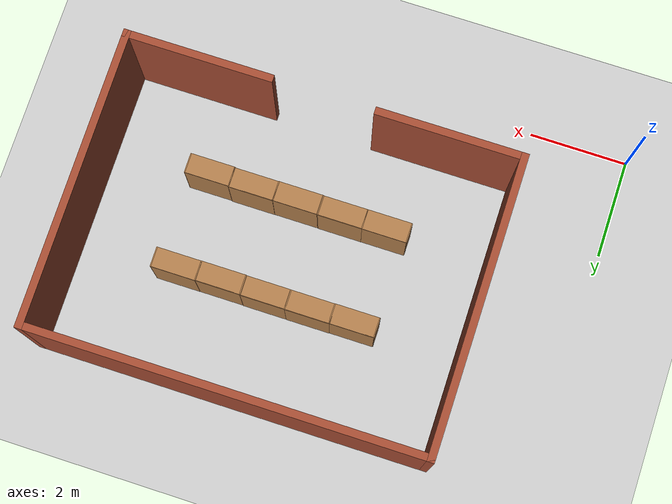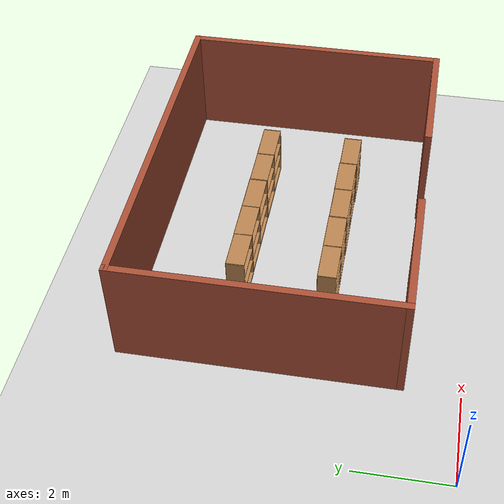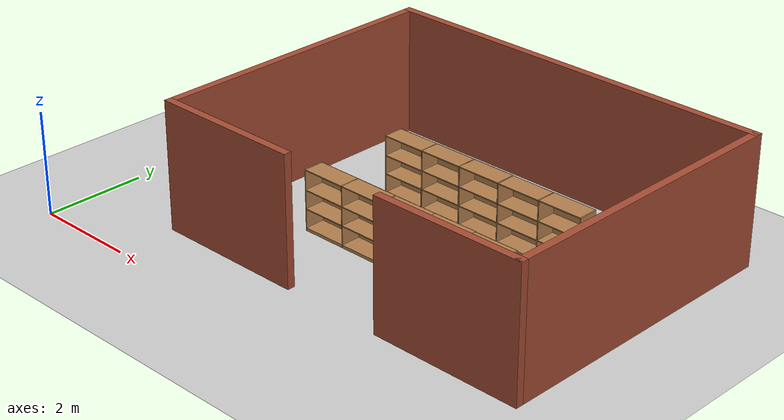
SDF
<sdf version="1.7">
 <world name="default">
  <light name="sun" type="directional">
   <pose>0 0 10 0 -0 0</pose>
   <diffuse>0.8 0.8 0.8 1</diffuse>
   <specular>0.2 0.2 0.2 1</specular>
   <attenuation>
    <range>1000</range>
    <constant>0.9</constant>
    <linear>0.01</linear>
    <quadratic>0.001</quadratic>
   </attenuation>
   <direction>-0.5 0.1 -0.9</direction>
   <spot><inner_angle>0</inner_angle><outer_angle>0</outer_angle><falloff>0</falloff></spot>
  </light>
  <model name="ground_plane">
   <static>1</static>
   <link name="link">
    <collision name="collision">
     <geometry><plane><normal>0 0 1</normal><size>100 100</size></plane></geometry>
     <surface><friction><ode><mu>100</mu><mu2>50</mu2></ode></friction></surface>
    </collision>
    <visual name="visual">
     <cast_shadows>0</cast_shadows>
     <geometry><plane><normal>0 0 1</normal><size>100 100</size></plane></geometry>
     <material>
      <script><uri>file://media/materials/scripts/gazebo.material</uri><name>Gazebo/Grey</name></script>
     </material>
    </visual>
   </link>
  </model>
  <gravity>0 0 -9.8</gravity>
  <magnetic_field>6e-06 2.3e-05 -4.2e-05</magnetic_field>
  <atmosphere type="adiabatic"/>
  <physics type="ode">
   <max_step_size>0.001</max_step_size>
   <real_time_factor>1</real_time_factor>
   <real_time_update_rate>1000</real_time_update_rate>
  </physics>
  <scene><ambient>0.4 0.4 0.4 1</ambient><background>0.7 0.7 0.7 1</background><shadows>1</shadows></scene>
  <audio><device>default</device></audio>
  <spherical_coordinates>
   <surface_model>EARTH_WGS84</surface_model>
   <latitude_deg>0</latitude_deg>
   <longitude_deg>0</longitude_deg>
   <elevation>0</elevation>
   <heading_deg>0</heading_deg>
  </spherical_coordinates>
  <model name="Mushroom">
   <pose>5.00197 3.57425 0 0 -0 0</pose>
   <link name="Wall_23">
    <collision name="Wall_23_Collision">
     <geometry><box><size>6 0.15 2.5</size></box></geometry>
     <pose>0 0 1.25 0 -0 0</pose>
    </collision>
    <visual name="Wall_23_Visual">
     <pose>0 0 1.25 0 -0 0</pose>
     <geometry><box><size>6 0.15 2.5</size></box></geometry>
     <material>
      <script><uri>file://media/materials/scripts/gazebo.material</uri><name>Gazebo/Bricks</name></script>
      <ambient>1 1 1 1</ambient>
     </material>
     <meta><layer>0</layer></meta>
    </visual>
    <pose>-2.92303 0.574253 0 0 -0 1.5708</pose>
   </link>
   <link name="Wall_24">
    <collision name="Wall_24_Collision">
     <geometry><box><size>8 0.15 2.5</size></box></geometry>
     <pose>0 0 1.25 0 -0 0</pose>
    </collision>
    <visual name="Wall_24_Visual">
     <pose>0 0 1.25 0 -0 0</pose>
     <geometry><box><size>8 0.15 2.5</size></box></geometry>
     <material>
      <script><uri>file://media/materials/scripts/gazebo.material</uri><name>Gazebo/Bricks</name></script>
      <ambient>1 1 1 1</ambient>
     </material>
     <meta><layer>0</layer></meta>
    </visual>
    <pose>1.00197 3.49925 0 0 -0 0</pose>
   </link>
   <link name="Wall_25">
    <collision name="Wall_25_Collision">
     <geometry><box><size>6 0.15 2.5</size></box></geometry>
     <pose>0 0 1.25 0 -0 0</pose>
    </collision>
    <visual name="Wall_25_Visual">
     <pose>0 0 1.25 0 -0 0</pose>
     <geometry><box><size>6 0.15 2.5</size></box></geometry>
     <material>
      <script><uri>file://media/materials/scripts/gazebo.material</uri><name>Gazebo/Bricks</name></script>
      <ambient>1 1 1 1</ambient>
     </material>
     <meta><layer>0</layer></meta>
    </visual>
    <pose>4.92697 0.574253 0 0 -0 -1.5708</pose>
   </link>
   <link name="Wall_30">
    <collision name="Wall_30_Collision">
     <geometry><box><size>3 0.15 2.5</size></box></geometry>
     <pose>0 0 1.25 0 -0 0</pose>
    </collision>
    <visual name="Wall_30_Visual">
     <pose>0 0 1.25 0 -0 0</pose>
     <geometry><box><size>3 0.15 2.5</size></box></geometry>
     <material>
      <script><uri>file://media/materials/scripts/gazebo.material</uri><name>Gazebo/Bricks</name></script>
      <ambient>1 1 1 1</ambient>
     </material>
     <meta><layer>0</layer></meta>
    </visual>
    <pose>-1.49803 -2.35075 0 0 -0 0</pose>
   </link>
   <link name="Wall_32">
    <collision name="Wall_32_Collision">
     <geometry><box><size>3 0.15 2.5</size></box></geometry>
     <pose>0 0 1.25 0 -0 0</pose>
    </collision>
    <visual name="Wall_32_Visual">
     <pose>0 0 1.25 0 -0 0</pose>
     <geometry><box><size>3 0.15 2.5</size></box></geometry>
     <material>
      <script><uri>file://media/materials/scripts/gazebo.material</uri><name>Gazebo/Bricks</name></script>
      <ambient>1 1 1 1</ambient>
     </material>
     <meta><layer>0</layer></meta>
    </visual>
    <pose>3.50197 -2.35075 0 0 -0 3.14159</pose>
   </link>
   <static>1</static>
  </model>
  <model name="bookshelf">
   <static>1</static>
   <link name="link">
    <inertial><mass>1</mass></inertial>
    <collision name="back">
     <pose>0 0.005 0.6 0 -0 0</pose>
     <geometry><box><size>0.9 0.01 1.2</size></box></geometry>
    </collision>
    <visual name="visual1">
     <pose>0 0.005 0.6 0 -0 0</pose>
     <geometry><box><size>0.9 0.01 1.2</size></box></geometry>
     <material>
      <script><uri>file://media/materials/scripts/gazebo.material</uri><name>Gazebo/Wood</name></script>
     </material>
    </visual>
    <collision name="left_side">
     <pose>0.45 -0.195 0.6 0 -0 0</pose>
     <geometry><box><size>0.02 0.4 1.2</size></box></geometry>
    </collision>
    <visual name="visual2">
     <pose>0.45 -0.195 0.6 0 -0 0</pose>
     <geometry><box><size>0.02 0.4 1.2</size></box></geometry>
     <material>
      <script><uri>file://media/materials/scripts/gazebo.material</uri><name>Gazebo/Wood</name></script>
     </material>
    </visual>
    <collision name="right_side">
     <pose>-0.45 -0.195 0.6 0 -0 0</pose>
     <geometry><box><size>0.02 0.4 1.2</size></box></geometry>
    </collision>
    <visual name="visual3">
     <pose>-0.45 -0.195 0.6 0 -0 0</pose>
     <geometry><box><size>0.02 0.4 1.2</size></box></geometry>
     <material>
      <script><uri>file://media/materials/scripts/gazebo.material</uri><name>Gazebo/Wood</name></script>
     </material>
    </visual>
    <collision name="bottom">
     <pose>0 -0.195 0.03 0 -0 0</pose>
     <geometry><box><size>0.88 0.4 0.06</size></box></geometry>
    </collision>
    <visual name="visual4">
     <pose>0 -0.195 0.03 0 -0 0</pose>
     <geometry><box><size>0.88 0.4 0.06</size></box></geometry>
     <material>
      <script><uri>file://media/materials/scripts/gazebo.material</uri><name>Gazebo/Wood</name></script>
     </material>
    </visual>
    <collision name="top">
     <pose>0 -0.195 1.19 0 -0 0</pose>
     <geometry><box><size>0.88 0.4 0.02</size></box></geometry>
    </collision>
    <visual name="visual5">
     <pose>0 -0.195 1.19 0 -0 0</pose>
     <geometry><box><size>0.88 0.4 0.02</size></box></geometry>
     <material>
      <script><uri>file://media/materials/scripts/gazebo.material</uri><name>Gazebo/Wood</name></script>
     </material>
    </visual>
    <collision name="low_shelf">
     <pose>0 -0.195 0.43 0 -0 0</pose>
     <geometry><box><size>0.88 0.4 0.02</size></box></geometry>
    </collision>
    <visual name="visual6">
     <pose>0 -0.195 0.43 0 -0 0</pose>
     <geometry><box><size>0.88 0.4 0.02</size></box></geometry>
     <material>
      <script><uri>file://media/materials/scripts/gazebo.material</uri><name>Gazebo/Wood</name></script>
     </material>
    </visual>
    <collision name="high_shelf">
     <pose>0 -0.195 0.8 0 -0 0</pose>
     <geometry><box><size>0.88 0.4 0.02</size></box></geometry>
    </collision>
    <visual name="visual7">
     <pose>0 -0.195 0.8 0 -0 0</pose>
     <geometry><box><size>0.88 0.4 0.02</size></box></geometry>
     <material>
      <script><uri>file://media/materials/scripts/gazebo.material</uri><name>Gazebo/Wood</name></script>
     </material>
    </visual>
   </link>
   <pose>4.16689 3.17225 0 0 -0 0</pose>
  </model>
  <model name="bookshelf_0">
   <static>1</static>
   <link name="link">
    <inertial><mass>1</mass></inertial>
    <collision name="back">
     <pose>0 0.005 0.6 0 -0 0</pose>
     <geometry><box><size>0.9 0.01 1.2</size></box></geometry>
    </collision>
    <visual name="visual1">
     <pose>0 0.005 0.6 0 -0 0</pose>
     <geometry><box><size>0.9 0.01 1.2</size></box></geometry>
     <material>
      <script><uri>file://media/materials/scripts/gazebo.material</uri><name>Gazebo/Wood</name></script>
     </material>
    </visual>
    <collision name="left_side">
     <pose>0.45 -0.195 0.6 0 -0 0</pose>
     <geometry><box><size>0.02 0.4 1.2</size></box></geometry>
    </collision>
    <visual name="visual2">
     <pose>0.45 -0.195 0.6 0 -0 0</pose>
     <geometry><box><size>0.02 0.4 1.2</size></box></geometry>
     <material>
      <script><uri>file://media/materials/scripts/gazebo.material</uri><name>Gazebo/Wood</name></script>
     </material>
    </visual>
    <collision name="right_side">
     <pose>-0.45 -0.195 0.6 0 -0 0</pose>
     <geometry><box><size>0.02 0.4 1.2</size></box></geometry>
    </collision>
    <visual name="visual3">
     <pose>-0.45 -0.195 0.6 0 -0 0</pose>
     <geometry><box><size>0.02 0.4 1.2</size></box></geometry>
     <material>
      <script><uri>file://media/materials/scripts/gazebo.material</uri><name>Gazebo/Wood</name></script>
     </material>
    </visual>
    <collision name="bottom">
     <pose>0 -0.195 0.03 0 -0 0</pose>
     <geometry><box><size>0.88 0.4 0.06</size></box></geometry>
    </collision>
    <visual name="visual4">
     <pose>0 -0.195 0.03 0 -0 0</pose>
     <geometry><box><size>0.88 0.4 0.06</size></box></geometry>
     <material>
      <script><uri>file://media/materials/scripts/gazebo.material</uri><name>Gazebo/Wood</name></script>
     </material>
    </visual>
    <collision name="top">
     <pose>0 -0.195 1.19 0 -0 0</pose>
     <geometry><box><size>0.88 0.4 0.02</size></box></geometry>
    </collision>
    <visual name="visual5">
     <pose>0 -0.195 1.19 0 -0 0</pose>
     <geometry><box><size>0.88 0.4 0.02</size></box></geometry>
     <material>
      <script><uri>file://media/materials/scripts/gazebo.material</uri><name>Gazebo/Wood</name></script>
     </material>
    </visual>
    <collision name="low_shelf">
     <pose>0 -0.195 0.43 0 -0 0</pose>
     <geometry><box><size>0.88 0.4 0.02</size></box></geometry>
    </collision>
    <visual name="visual6">
     <pose>0 -0.195 0.43 0 -0 0</pose>
     <geometry><box><size>0.88 0.4 0.02</size></box></geometry>
     <material>
      <script><uri>file://media/materials/scripts/gazebo.material</uri><name>Gazebo/Wood</name></script>
     </material>
    </visual>
    <collision name="high_shelf">
     <pose>0 -0.195 0.8 0 -0 0</pose>
     <geometry><box><size>0.88 0.4 0.02</size></box></geometry>
    </collision>
    <visual name="visual7">
     <pose>0 -0.195 0.8 0 -0 0</pose>
     <geometry><box><size>0.88 0.4 0.02</size></box></geometry>
     <material>
      <script><uri>file://media/materials/scripts/gazebo.material</uri><name>Gazebo/Wood</name></script>
     </material>
    </visual>
   </link>
   <pose>5.06363 3.17286 0 0 -0 0</pose>
  </model>
  <model name="bookshelf_1">
   <static>1</static>
   <link name="link">
    <inertial><mass>1</mass></inertial>
    <collision name="back">
     <pose>0 0.005 0.6 0 -0 0</pose>
     <geometry><box><size>0.9 0.01 1.2</size></box></geometry>
    </collision>
    <visual name="visual1">
     <pose>0 0.005 0.6 0 -0 0</pose>
     <geometry><box><size>0.9 0.01 1.2</size></box></geometry>
     <material>
      <script><uri>file://media/materials/scripts/gazebo.material</uri><name>Gazebo/Wood</name></script>
     </material>
    </visual>
    <collision name="left_side">
     <pose>0.45 -0.195 0.6 0 -0 0</pose>
     <geometry><box><size>0.02 0.4 1.2</size></box></geometry>
    </collision>
    <visual name="visual2">
     <pose>0.45 -0.195 0.6 0 -0 0</pose>
     <geometry><box><size>0.02 0.4 1.2</size></box></geometry>
     <material>
      <script><uri>file://media/materials/scripts/gazebo.material</uri><name>Gazebo/Wood</name></script>
     </material>
    </visual>
    <collision name="right_side">
     <pose>-0.45 -0.195 0.6 0 -0 0</pose>
     <geometry><box><size>0.02 0.4 1.2</size></box></geometry>
    </collision>
    <visual name="visual3">
     <pose>-0.45 -0.195 0.6 0 -0 0</pose>
     <geometry><box><size>0.02 0.4 1.2</size></box></geometry>
     <material>
      <script><uri>file://media/materials/scripts/gazebo.material</uri><name>Gazebo/Wood</name></script>
     </material>
    </visual>
    <collision name="bottom">
     <pose>0 -0.195 0.03 0 -0 0</pose>
     <geometry><box><size>0.88 0.4 0.06</size></box></geometry>
    </collision>
    <visual name="visual4">
     <pose>0 -0.195 0.03 0 -0 0</pose>
     <geometry><box><size>0.88 0.4 0.06</size></box></geometry>
     <material>
      <script><uri>file://media/materials/scripts/gazebo.material</uri><name>Gazebo/Wood</name></script>
     </material>
    </visual>
    <collision name="top">
     <pose>0 -0.195 1.19 0 -0 0</pose>
     <geometry><box><size>0.88 0.4 0.02</size></box></geometry>
    </collision>
    <visual name="visual5">
     <pose>0 -0.195 1.19 0 -0 0</pose>
     <geometry><box><size>0.88 0.4 0.02</size></box></geometry>
     <material>
      <script><uri>file://media/materials/scripts/gazebo.material</uri><name>Gazebo/Wood</name></script>
     </material>
    </visual>
    <collision name="low_shelf">
     <pose>0 -0.195 0.43 0 -0 0</pose>
     <geometry><box><size>0.88 0.4 0.02</size></box></geometry>
    </collision>
    <visual name="visual6">
     <pose>0 -0.195 0.43 0 -0 0</pose>
     <geometry><box><size>0.88 0.4 0.02</size></box></geometry>
     <material>
      <script><uri>file://media/materials/scripts/gazebo.material</uri><name>Gazebo/Wood</name></script>
     </material>
    </visual>
    <collision name="high_shelf">
     <pose>0 -0.195 0.8 0 -0 0</pose>
     <geometry><box><size>0.88 0.4 0.02</size></box></geometry>
    </collision>
    <visual name="visual7">
     <pose>0 -0.195 0.8 0 -0 0</pose>
     <geometry><box><size>0.88 0.4 0.02</size></box></geometry>
     <material>
      <script><uri>file://media/materials/scripts/gazebo.material</uri><name>Gazebo/Wood</name></script>
     </material>
    </visual>
   </link>
   <pose>5.97572 3.16757 0 0 -0 0</pose>
  </model>
  <model name="bookshelf_2">
   <static>1</static>
   <link name="link">
    <inertial><mass>1</mass></inertial>
    <collision name="back">
     <pose>0 0.005 0.6 0 -0 0</pose>
     <geometry><box><size>0.9 0.01 1.2</size></box></geometry>
    </collision>
    <visual name="visual1">
     <pose>0 0.005 0.6 0 -0 0</pose>
     <geometry><box><size>0.9 0.01 1.2</size></box></geometry>
     <material>
      <script><uri>file://media/materials/scripts/gazebo.material</uri><name>Gazebo/Wood</name></script>
     </material>
    </visual>
    <collision name="left_side">
     <pose>0.45 -0.195 0.6 0 -0 0</pose>
     <geometry><box><size>0.02 0.4 1.2</size></box></geometry>
    </collision>
    <visual name="visual2">
     <pose>0.45 -0.195 0.6 0 -0 0</pose>
     <geometry><box><size>0.02 0.4 1.2</size></box></geometry>
     <material>
      <script><uri>file://media/materials/scripts/gazebo.material</uri><name>Gazebo/Wood</name></script>
     </material>
    </visual>
    <collision name="right_side">
     <pose>-0.45 -0.195 0.6 0 -0 0</pose>
     <geometry><box><size>0.02 0.4 1.2</size></box></geometry>
    </collision>
    <visual name="visual3">
     <pose>-0.45 -0.195 0.6 0 -0 0</pose>
     <geometry><box><size>0.02 0.4 1.2</size></box></geometry>
     <material>
      <script><uri>file://media/materials/scripts/gazebo.material</uri><name>Gazebo/Wood</name></script>
     </material>
    </visual>
    <collision name="bottom">
     <pose>0 -0.195 0.03 0 -0 0</pose>
     <geometry><box><size>0.88 0.4 0.06</size></box></geometry>
    </collision>
    <visual name="visual4">
     <pose>0 -0.195 0.03 0 -0 0</pose>
     <geometry><box><size>0.88 0.4 0.06</size></box></geometry>
     <material>
      <script><uri>file://media/materials/scripts/gazebo.material</uri><name>Gazebo/Wood</name></script>
     </material>
    </visual>
    <collision name="top">
     <pose>0 -0.195 1.19 0 -0 0</pose>
     <geometry><box><size>0.88 0.4 0.02</size></box></geometry>
    </collision>
    <visual name="visual5">
     <pose>0 -0.195 1.19 0 -0 0</pose>
     <geometry><box><size>0.88 0.4 0.02</size></box></geometry>
     <material>
      <script><uri>file://media/materials/scripts/gazebo.material</uri><name>Gazebo/Wood</name></script>
     </material>
    </visual>
    <collision name="low_shelf">
     <pose>0 -0.195 0.43 0 -0 0</pose>
     <geometry><box><size>0.88 0.4 0.02</size></box></geometry>
    </collision>
    <visual name="visual6">
     <pose>0 -0.195 0.43 0 -0 0</pose>
     <geometry><box><size>0.88 0.4 0.02</size></box></geometry>
     <material>
      <script><uri>file://media/materials/scripts/gazebo.material</uri><name>Gazebo/Wood</name></script>
     </material>
    </visual>
    <collision name="high_shelf">
     <pose>0 -0.195 0.8 0 -0 0</pose>
     <geometry><box><size>0.88 0.4 0.02</size></box></geometry>
    </collision>
    <visual name="visual7">
     <pose>0 -0.195 0.8 0 -0 0</pose>
     <geometry><box><size>0.88 0.4 0.02</size></box></geometry>
     <material>
      <script><uri>file://media/materials/scripts/gazebo.material</uri><name>Gazebo/Wood</name></script>
     </material>
    </visual>
   </link>
   <pose>6.87805 3.17101 0 0 -0 0</pose>
  </model>
  <model name="bookshelf_3">
   <static>1</static>
   <link name="link">
    <inertial><mass>1</mass></inertial>
    <collision name="back">
     <pose>0 0.005 0.6 0 -0 0</pose>
     <geometry><box><size>0.9 0.01 1.2</size></box></geometry>
    </collision>
    <visual name="visual1">
     <pose>0 0.005 0.6 0 -0 0</pose>
     <geometry><box><size>0.9 0.01 1.2</size></box></geometry>
     <material>
      <script><uri>file://media/materials/scripts/gazebo.material</uri><name>Gazebo/Wood</name></script>
     </material>
    </visual>
    <collision name="left_side">
     <pose>0.45 -0.195 0.6 0 -0 0</pose>
     <geometry><box><size>0.02 0.4 1.2</size></box></geometry>
    </collision>
    <visual name="visual2">
     <pose>0.45 -0.195 0.6 0 -0 0</pose>
     <geometry><box><size>0.02 0.4 1.2</size></box></geometry>
     <material>
      <script><uri>file://media/materials/scripts/gazebo.material</uri><name>Gazebo/Wood</name></script>
     </material>
    </visual>
    <collision name="right_side">
     <pose>-0.45 -0.195 0.6 0 -0 0</pose>
     <geometry><box><size>0.02 0.4 1.2</size></box></geometry>
    </collision>
    <visual name="visual3">
     <pose>-0.45 -0.195 0.6 0 -0 0</pose>
     <geometry><box><size>0.02 0.4 1.2</size></box></geometry>
     <material>
      <script><uri>file://media/materials/scripts/gazebo.material</uri><name>Gazebo/Wood</name></script>
     </material>
    </visual>
    <collision name="bottom">
     <pose>0 -0.195 0.03 0 -0 0</pose>
     <geometry><box><size>0.88 0.4 0.06</size></box></geometry>
    </collision>
    <visual name="visual4">
     <pose>0 -0.195 0.03 0 -0 0</pose>
     <geometry><box><size>0.88 0.4 0.06</size></box></geometry>
     <material>
      <script><uri>file://media/materials/scripts/gazebo.material</uri><name>Gazebo/Wood</name></script>
     </material>
    </visual>
    <collision name="top">
     <pose>0 -0.195 1.19 0 -0 0</pose>
     <geometry><box><size>0.88 0.4 0.02</size></box></geometry>
    </collision>
    <visual name="visual5">
     <pose>0 -0.195 1.19 0 -0 0</pose>
     <geometry><box><size>0.88 0.4 0.02</size></box></geometry>
     <material>
      <script><uri>file://media/materials/scripts/gazebo.material</uri><name>Gazebo/Wood</name></script>
     </material>
    </visual>
    <collision name="low_shelf">
     <pose>0 -0.195 0.43 0 -0 0</pose>
     <geometry><box><size>0.88 0.4 0.02</size></box></geometry>
    </collision>
    <visual name="visual6">
     <pose>0 -0.195 0.43 0 -0 0</pose>
     <geometry><box><size>0.88 0.4 0.02</size></box></geometry>
     <material>
      <script><uri>file://media/materials/scripts/gazebo.material</uri><name>Gazebo/Wood</name></script>
     </material>
    </visual>
    <collision name="high_shelf">
     <pose>0 -0.195 0.8 0 -0 0</pose>
     <geometry><box><size>0.88 0.4 0.02</size></box></geometry>
    </collision>
    <visual name="visual7">
     <pose>0 -0.195 0.8 0 -0 0</pose>
     <geometry><box><size>0.88 0.4 0.02</size></box></geometry>
     <material>
      <script><uri>file://media/materials/scripts/gazebo.material</uri><name>Gazebo/Wood</name></script>
     </material>
    </visual>
   </link>
   <pose>7.78025 3.15947 0 0 -0 0</pose>
  </model>
  <model name="bookshelf_4">
   <static>1</static>
   <link name="link">
    <inertial><mass>1</mass></inertial>
    <collision name="back">
     <pose>0 0.005 0.6 0 -0 0</pose>
     <geometry><box><size>0.9 0.01 1.2</size></box></geometry>
    </collision>
    <visual name="visual1">
     <pose>0 0.005 0.6 0 -0 0</pose>
     <geometry><box><size>0.9 0.01 1.2</size></box></geometry>
     <material>
      <script><uri>file://media/materials/scripts/gazebo.material</uri><name>Gazebo/Wood</name></script>
     </material>
    </visual>
    <collision name="left_side">
     <pose>0.45 -0.195 0.6 0 -0 0</pose>
     <geometry><box><size>0.02 0.4 1.2</size></box></geometry>
    </collision>
    <visual name="visual2">
     <pose>0.45 -0.195 0.6 0 -0 0</pose>
     <geometry><box><size>0.02 0.4 1.2</size></box></geometry>
     <material>
      <script><uri>file://media/materials/scripts/gazebo.material</uri><name>Gazebo/Wood</name></script>
     </material>
    </visual>
    <collision name="right_side">
     <pose>-0.45 -0.195 0.6 0 -0 0</pose>
     <geometry><box><size>0.02 0.4 1.2</size></box></geometry>
    </collision>
    <visual name="visual3">
     <pose>-0.45 -0.195 0.6 0 -0 0</pose>
     <geometry><box><size>0.02 0.4 1.2</size></box></geometry>
     <material>
      <script><uri>file://media/materials/scripts/gazebo.material</uri><name>Gazebo/Wood</name></script>
     </material>
    </visual>
    <collision name="bottom">
     <pose>0 -0.195 0.03 0 -0 0</pose>
     <geometry><box><size>0.88 0.4 0.06</size></box></geometry>
    </collision>
    <visual name="visual4">
     <pose>0 -0.195 0.03 0 -0 0</pose>
     <geometry><box><size>0.88 0.4 0.06</size></box></geometry>
     <material>
      <script><uri>file://media/materials/scripts/gazebo.material</uri><name>Gazebo/Wood</name></script>
     </material>
    </visual>
    <collision name="top">
     <pose>0 -0.195 1.19 0 -0 0</pose>
     <geometry><box><size>0.88 0.4 0.02</size></box></geometry>
    </collision>
    <visual name="visual5">
     <pose>0 -0.195 1.19 0 -0 0</pose>
     <geometry><box><size>0.88 0.4 0.02</size></box></geometry>
     <material>
      <script><uri>file://media/materials/scripts/gazebo.material</uri><name>Gazebo/Wood</name></script>
     </material>
    </visual>
    <collision name="low_shelf">
     <pose>0 -0.195 0.43 0 -0 0</pose>
     <geometry><box><size>0.88 0.4 0.02</size></box></geometry>
    </collision>
    <visual name="visual6">
     <pose>0 -0.195 0.43 0 -0 0</pose>
     <geometry><box><size>0.88 0.4 0.02</size></box></geometry>
     <material>
      <script><uri>file://media/materials/scripts/gazebo.material</uri><name>Gazebo/Wood</name></script>
     </material>
    </visual>
    <collision name="high_shelf">
     <pose>0 -0.195 0.8 0 -0 0</pose>
     <geometry><box><size>0.88 0.4 0.02</size></box></geometry>
    </collision>
    <visual name="visual7">
     <pose>0 -0.195 0.8 0 -0 0</pose>
     <geometry><box><size>0.88 0.4 0.02</size></box></geometry>
     <material>
      <script><uri>file://media/materials/scripts/gazebo.material</uri><name>Gazebo/Wood</name></script>
     </material>
    </visual>
   </link>
   <pose>4.20154 5.12044 0 0 -0 0</pose>
  </model>
  <model name="bookshelf_5">
   <static>1</static>
   <link name="link">
    <inertial><mass>1</mass></inertial>
    <collision name="back">
     <pose>0 0.005 0.6 0 -0 0</pose>
     <geometry><box><size>0.9 0.01 1.2</size></box></geometry>
    </collision>
    <visual name="visual1">
     <pose>0 0.005 0.6 0 -0 0</pose>
     <geometry><box><size>0.9 0.01 1.2</size></box></geometry>
     <material>
      <script><uri>file://media/materials/scripts/gazebo.material</uri><name>Gazebo/Wood</name></script>
     </material>
    </visual>
    <collision name="left_side">
     <pose>0.45 -0.195 0.6 0 -0 0</pose>
     <geometry><box><size>0.02 0.4 1.2</size></box></geometry>
    </collision>
    <visual name="visual2">
     <pose>0.45 -0.195 0.6 0 -0 0</pose>
     <geometry><box><size>0.02 0.4 1.2</size></box></geometry>
     <material>
      <script><uri>file://media/materials/scripts/gazebo.material</uri><name>Gazebo/Wood</name></script>
     </material>
    </visual>
    <collision name="right_side">
     <pose>-0.45 -0.195 0.6 0 -0 0</pose>
     <geometry><box><size>0.02 0.4 1.2</size></box></geometry>
    </collision>
    <visual name="visual3">
     <pose>-0.45 -0.195 0.6 0 -0 0</pose>
     <geometry><box><size>0.02 0.4 1.2</size></box></geometry>
     <material>
      <script><uri>file://media/materials/scripts/gazebo.material</uri><name>Gazebo/Wood</name></script>
     </material>
    </visual>
    <collision name="bottom">
     <pose>0 -0.195 0.03 0 -0 0</pose>
     <geometry><box><size>0.88 0.4 0.06</size></box></geometry>
    </collision>
    <visual name="visual4">
     <pose>0 -0.195 0.03 0 -0 0</pose>
     <geometry><box><size>0.88 0.4 0.06</size></box></geometry>
     <material>
      <script><uri>file://media/materials/scripts/gazebo.material</uri><name>Gazebo/Wood</name></script>
     </material>
    </visual>
    <collision name="top">
     <pose>0 -0.195 1.19 0 -0 0</pose>
     <geometry><box><size>0.88 0.4 0.02</size></box></geometry>
    </collision>
    <visual name="visual5">
     <pose>0 -0.195 1.19 0 -0 0</pose>
     <geometry><box><size>0.88 0.4 0.02</size></box></geometry>
     <material>
      <script><uri>file://media/materials/scripts/gazebo.material</uri><name>Gazebo/Wood</name></script>
     </material>
    </visual>
    <collision name="low_shelf">
     <pose>0 -0.195 0.43 0 -0 0</pose>
     <geometry><box><size>0.88 0.4 0.02</size></box></geometry>
    </collision>
    <visual name="visual6">
     <pose>0 -0.195 0.43 0 -0 0</pose>
     <geometry><box><size>0.88 0.4 0.02</size></box></geometry>
     <material>
      <script><uri>file://media/materials/scripts/gazebo.material</uri><name>Gazebo/Wood</name></script>
     </material>
    </visual>
    <collision name="high_shelf">
     <pose>0 -0.195 0.8 0 -0 0</pose>
     <geometry><box><size>0.88 0.4 0.02</size></box></geometry>
    </collision>
    <visual name="visual7">
     <pose>0 -0.195 0.8 0 -0 0</pose>
     <geometry><box><size>0.88 0.4 0.02</size></box></geometry>
     <material>
      <script><uri>file://media/materials/scripts/gazebo.material</uri><name>Gazebo/Wood</name></script>
     </material>
    </visual>
   </link>
   <pose>5.09077 5.12508 0 0 -0 0</pose>
  </model>
  <model name="bookshelf_6">
   <static>1</static>
   <link name="link">
    <inertial><mass>1</mass></inertial>
    <collision name="back">
     <pose>0 0.005 0.6 0 -0 0</pose>
     <geometry><box><size>0.9 0.01 1.2</size></box></geometry>
    </collision>
    <visual name="visual1">
     <pose>0 0.005 0.6 0 -0 0</pose>
     <geometry><box><size>0.9 0.01 1.2</size></box></geometry>
     <material>
      <script><uri>file://media/materials/scripts/gazebo.material</uri><name>Gazebo/Wood</name></script>
     </material>
    </visual>
    <collision name="left_side">
     <pose>0.45 -0.195 0.6 0 -0 0</pose>
     <geometry><box><size>0.02 0.4 1.2</size></box></geometry>
    </collision>
    <visual name="visual2">
     <pose>0.45 -0.195 0.6 0 -0 0</pose>
     <geometry><box><size>0.02 0.4 1.2</size></box></geometry>
     <material>
      <script><uri>file://media/materials/scripts/gazebo.material</uri><name>Gazebo/Wood</name></script>
     </material>
    </visual>
    <collision name="right_side">
     <pose>-0.45 -0.195 0.6 0 -0 0</pose>
     <geometry><box><size>0.02 0.4 1.2</size></box></geometry>
    </collision>
    <visual name="visual3">
     <pose>-0.45 -0.195 0.6 0 -0 0</pose>
     <geometry><box><size>0.02 0.4 1.2</size></box></geometry>
     <material>
      <script><uri>file://media/materials/scripts/gazebo.material</uri><name>Gazebo/Wood</name></script>
     </material>
    </visual>
    <collision name="bottom">
     <pose>0 -0.195 0.03 0 -0 0</pose>
     <geometry><box><size>0.88 0.4 0.06</size></box></geometry>
    </collision>
    <visual name="visual4">
     <pose>0 -0.195 0.03 0 -0 0</pose>
     <geometry><box><size>0.88 0.4 0.06</size></box></geometry>
     <material>
      <script><uri>file://media/materials/scripts/gazebo.material</uri><name>Gazebo/Wood</name></script>
     </material>
    </visual>
    <collision name="top">
     <pose>0 -0.195 1.19 0 -0 0</pose>
     <geometry><box><size>0.88 0.4 0.02</size></box></geometry>
    </collision>
    <visual name="visual5">
     <pose>0 -0.195 1.19 0 -0 0</pose>
     <geometry><box><size>0.88 0.4 0.02</size></box></geometry>
     <material>
      <script><uri>file://media/materials/scripts/gazebo.material</uri><name>Gazebo/Wood</name></script>
     </material>
    </visual>
    <collision name="low_shelf">
     <pose>0 -0.195 0.43 0 -0 0</pose>
     <geometry><box><size>0.88 0.4 0.02</size></box></geometry>
    </collision>
    <visual name="visual6">
     <pose>0 -0.195 0.43 0 -0 0</pose>
     <geometry><box><size>0.88 0.4 0.02</size></box></geometry>
     <material>
      <script><uri>file://media/materials/scripts/gazebo.material</uri><name>Gazebo/Wood</name></script>
     </material>
    </visual>
    <collision name="high_shelf">
     <pose>0 -0.195 0.8 0 -0 0</pose>
     <geometry><box><size>0.88 0.4 0.02</size></box></geometry>
    </collision>
    <visual name="visual7">
     <pose>0 -0.195 0.8 0 -0 0</pose>
     <geometry><box><size>0.88 0.4 0.02</size></box></geometry>
     <material>
      <script><uri>file://media/materials/scripts/gazebo.material</uri><name>Gazebo/Wood</name></script>
     </material>
    </visual>
   </link>
   <pose>5.984 5.12311 0 0 -0 0</pose>
  </model>
  <model name="bookshelf_7">
   <static>1</static>
   <link name="link">
    <inertial><mass>1</mass></inertial>
    <collision name="back">
     <pose>0 0.005 0.6 0 -0 0</pose>
     <geometry><box><size>0.9 0.01 1.2</size></box></geometry>
    </collision>
    <visual name="visual1">
     <pose>0 0.005 0.6 0 -0 0</pose>
     <geometry><box><size>0.9 0.01 1.2</size></box></geometry>
     <material>
      <script><uri>file://media/materials/scripts/gazebo.material</uri><name>Gazebo/Wood</name></script>
     </material>
    </visual>
    <collision name="left_side">
     <pose>0.45 -0.195 0.6 0 -0 0</pose>
     <geometry><box><size>0.02 0.4 1.2</size></box></geometry>
    </collision>
    <visual name="visual2">
     <pose>0.45 -0.195 0.6 0 -0 0</pose>
     <geometry><box><size>0.02 0.4 1.2</size></box></geometry>
     <material>
      <script><uri>file://media/materials/scripts/gazebo.material</uri><name>Gazebo/Wood</name></script>
     </material>
    </visual>
    <collision name="right_side">
     <pose>-0.45 -0.195 0.6 0 -0 0</pose>
     <geometry><box><size>0.02 0.4 1.2</size></box></geometry>
    </collision>
    <visual name="visual3">
     <pose>-0.45 -0.195 0.6 0 -0 0</pose>
     <geometry><box><size>0.02 0.4 1.2</size></box></geometry>
     <material>
      <script><uri>file://media/materials/scripts/gazebo.material</uri><name>Gazebo/Wood</name></script>
     </material>
    </visual>
    <collision name="bottom">
     <pose>0 -0.195 0.03 0 -0 0</pose>
     <geometry><box><size>0.88 0.4 0.06</size></box></geometry>
    </collision>
    <visual name="visual4">
     <pose>0 -0.195 0.03 0 -0 0</pose>
     <geometry><box><size>0.88 0.4 0.06</size></box></geometry>
     <material>
      <script><uri>file://media/materials/scripts/gazebo.material</uri><name>Gazebo/Wood</name></script>
     </material>
    </visual>
    <collision name="top">
     <pose>0 -0.195 1.19 0 -0 0</pose>
     <geometry><box><size>0.88 0.4 0.02</size></box></geometry>
    </collision>
    <visual name="visual5">
     <pose>0 -0.195 1.19 0 -0 0</pose>
     <geometry><box><size>0.88 0.4 0.02</size></box></geometry>
     <material>
      <script><uri>file://media/materials/scripts/gazebo.material</uri><name>Gazebo/Wood</name></script>
     </material>
    </visual>
    <collision name="low_shelf">
     <pose>0 -0.195 0.43 0 -0 0</pose>
     <geometry><box><size>0.88 0.4 0.02</size></box></geometry>
    </collision>
    <visual name="visual6">
     <pose>0 -0.195 0.43 0 -0 0</pose>
     <geometry><box><size>0.88 0.4 0.02</size></box></geometry>
     <material>
      <script><uri>file://media/materials/scripts/gazebo.material</uri><name>Gazebo/Wood</name></script>
     </material>
    </visual>
    <collision name="high_shelf">
     <pose>0 -0.195 0.8 0 -0 0</pose>
     <geometry><box><size>0.88 0.4 0.02</size></box></geometry>
    </collision>
    <visual name="visual7">
     <pose>0 -0.195 0.8 0 -0 0</pose>
     <geometry><box><size>0.88 0.4 0.02</size></box></geometry>
     <material>
      <script><uri>file://media/materials/scripts/gazebo.material</uri><name>Gazebo/Wood</name></script>
     </material>
    </visual>
   </link>
   <pose>6.89398 5.11677 0 0 -0 0</pose>
  </model>
  <model name="bookshelf_8">
   <static>1</static>
   <link name="link">
    <inertial><mass>1</mass></inertial>
    <collision name="back">
     <pose>0 0.005 0.6 0 -0 0</pose>
     <geometry><box><size>0.9 0.01 1.2</size></box></geometry>
    </collision>
    <visual name="visual1">
     <pose>0 0.005 0.6 0 -0 0</pose>
     <geometry><box><size>0.9 0.01 1.2</size></box></geometry>
     <material>
      <script><uri>file://media/materials/scripts/gazebo.material</uri><name>Gazebo/Wood</name></script>
     </material>
    </visual>
    <collision name="left_side">
     <pose>0.45 -0.195 0.6 0 -0 0</pose>
     <geometry><box><size>0.02 0.4 1.2</size></box></geometry>
    </collision>
    <visual name="visual2">
     <pose>0.45 -0.195 0.6 0 -0 0</pose>
     <geometry><box><size>0.02 0.4 1.2</size></box></geometry>
     <material>
      <script><uri>file://media/materials/scripts/gazebo.material</uri><name>Gazebo/Wood</name></script>
     </material>
    </visual>
    <collision name="right_side">
     <pose>-0.45 -0.195 0.6 0 -0 0</pose>
     <geometry><box><size>0.02 0.4 1.2</size></box></geometry>
    </collision>
    <visual name="visual3">
     <pose>-0.45 -0.195 0.6 0 -0 0</pose>
     <geometry><box><size>0.02 0.4 1.2</size></box></geometry>
     <material>
      <script><uri>file://media/materials/scripts/gazebo.material</uri><name>Gazebo/Wood</name></script>
     </material>
    </visual>
    <collision name="bottom">
     <pose>0 -0.195 0.03 0 -0 0</pose>
     <geometry><box><size>0.88 0.4 0.06</size></box></geometry>
    </collision>
    <visual name="visual4">
     <pose>0 -0.195 0.03 0 -0 0</pose>
     <geometry><box><size>0.88 0.4 0.06</size></box></geometry>
     <material>
      <script><uri>file://media/materials/scripts/gazebo.material</uri><name>Gazebo/Wood</name></script>
     </material>
    </visual>
    <collision name="top">
     <pose>0 -0.195 1.19 0 -0 0</pose>
     <geometry><box><size>0.88 0.4 0.02</size></box></geometry>
    </collision>
    <visual name="visual5">
     <pose>0 -0.195 1.19 0 -0 0</pose>
     <geometry><box><size>0.88 0.4 0.02</size></box></geometry>
     <material>
      <script><uri>file://media/materials/scripts/gazebo.material</uri><name>Gazebo/Wood</name></script>
     </material>
    </visual>
    <collision name="low_shelf">
     <pose>0 -0.195 0.43 0 -0 0</pose>
     <geometry><box><size>0.88 0.4 0.02</size></box></geometry>
    </collision>
    <visual name="visual6">
     <pose>0 -0.195 0.43 0 -0 0</pose>
     <geometry><box><size>0.88 0.4 0.02</size></box></geometry>
     <material>
      <script><uri>file://media/materials/scripts/gazebo.material</uri><name>Gazebo/Wood</name></script>
     </material>
    </visual>
    <collision name="high_shelf">
     <pose>0 -0.195 0.8 0 -0 0</pose>
     <geometry><box><size>0.88 0.4 0.02</size></box></geometry>
    </collision>
    <visual name="visual7">
     <pose>0 -0.195 0.8 0 -0 0</pose>
     <geometry><box><size>0.88 0.4 0.02</size></box></geometry>
     <material>
      <script><uri>file://media/materials/scripts/gazebo.material</uri><name>Gazebo/Wood</name></script>
     </material>
    </visual>
   </link>
   <pose>7.79694 5.11983 0 0 -0 0</pose>
  </model>
 </world>
</sdf>
